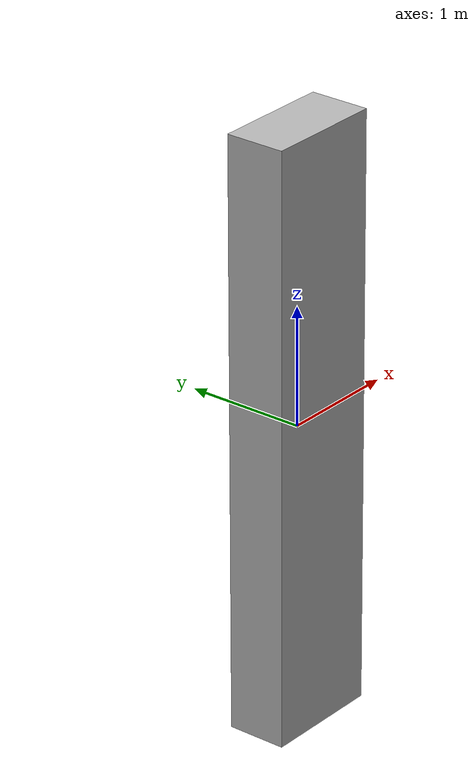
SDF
<?xml version="1.0" ?>
<sdf version="1.5">
  <model name="obstacle_2">
    <static>false</static>
    <link name="link">
      <pose>0 0 0 0 0 0</pose>
      <collision name="collision">
        <geometry>
          <box>
            <size>1.0 0.5 5.0</size>
          </box>
        </geometry>
      </collision>
      <visual name="visual">
        <geometry>
          <box>
            <size>1.0 0.5 5.0</size>
          </box>
        </geometry>
      </visual>
    </link>
  </model>
</sdf>
